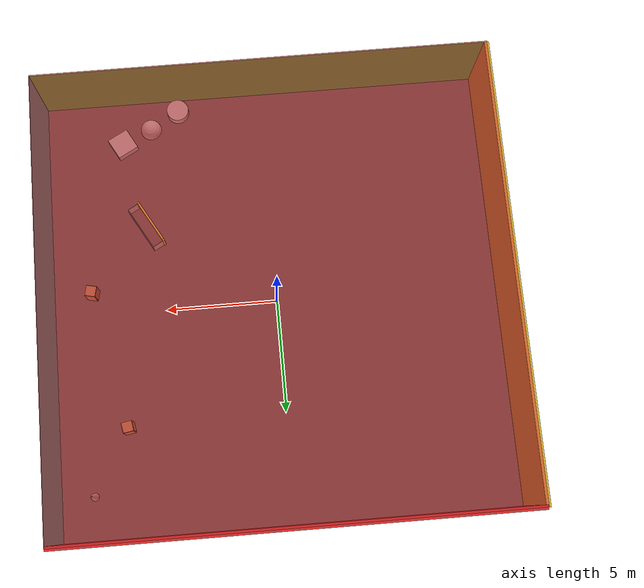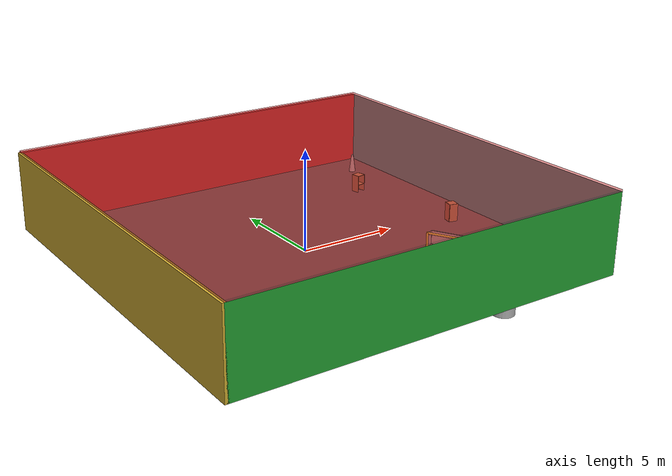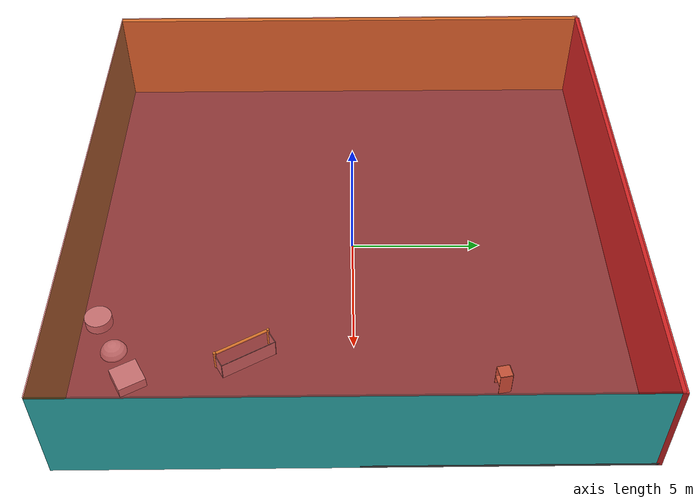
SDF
<sdf version="1.4">
 <world name="default">
  <physics type="ode">
   <max_step_size>0.001</max_step_size>
   <real_time_factor>1</real_time_factor>
   <real_time_update_rate>1000</real_time_update_rate>
   <gravity>0 0 -9.8</gravity>
  </physics>
  <scene><ambient>0.4 0.4 0.4 1</ambient><background>0.7 0.7 0.7 1</background><shadows>1</shadows></scene>
  <model name="Surrounding">
   <static>1</static>
   <link name="Ceiling">
    <collision name="Ceiling_Collision"><geometry><box><size>20 20 0.1</size></box></geometry></collision>
    <visual name="Ceiling_Visual">
     <geometry><box><size>20 20 0.1</size></box></geometry>
     <material>
      <script><uri>file://media/materials/scripts/gazebo.material</uri><name>Gazebo/RedTransparent</name></script>
     </material>
    </visual>
    <pose>0 0 4.05 0 0 0</pose>
   </link>
   <link name="Wall_South">
    <collision name="Wall_South_Collision">
     <geometry><box><size>20 0 4</size></box></geometry>
     <pose>0 0 2 0 -0 0</pose>
    </collision>
    <visual name="Wall_South_Visual">
     <pose>0 0 2 0 -0 0</pose>
     <geometry><box><size>20 0 4</size></box></geometry>
     <material>
      <script><uri>file://media/materials/scripts/gazebo.material</uri><name>Gazebo/Green</name></script>
     </material>
    </visual>
    <velocity_decay><linear>0</linear><angular>0</angular></velocity_decay>
    <pose>0 -10 0 0 -0 0</pose>
   </link>
   <link name="Wall_East">
    <collision name="Wall_21_Collision">
     <geometry><box><size>20 0 4</size></box></geometry>
     <pose>0 0 2 0 -0 0</pose>
    </collision>
    <visual name="Wall_21_Visual">
     <pose>0 0 2 0 -0 0</pose>
     <geometry><box><size>20 0 4</size></box></geometry>
     <material>
      <script><uri>file://media/materials/scripts/gazebo.material</uri><name>Gazebo/Turquoise</name></script>
     </material>
    </visual>
    <velocity_decay><linear>0</linear><angular>0</angular></velocity_decay>
    <pose>10 0 0 0 -0 1.5708</pose>
   </link>
   <link name="Wall_North">
    <collision name="Wall_22_Collision">
     <geometry><box><size>20 0.2 4</size></box></geometry>
     <pose>0 0 2 0 -0 0</pose>
    </collision>
    <visual name="Wall_22_Visual">
     <pose>0 0 2 0 -0 0</pose>
     <geometry><box><size>20 0.2 4</size></box></geometry>
     <material>
      <script><uri>file://media/materials/scripts/gazebo.material</uri><name>Gazebo/RedBright</name></script>
     </material>
    </visual>
    <velocity_decay><linear>0</linear><angular>0</angular></velocity_decay>
    <pose>0 10 0 0 -0 0</pose>
   </link>
   <link name="Wall_West">
    <collision name="Wall_23_Collision">
     <geometry><box><size>20 0.2 4</size></box></geometry>
     <pose>0 0 2 0 -0 0</pose>
    </collision>
    <visual name="Wall_23_Visual">
     <pose>0 0 2 0 -0 0</pose>
     <geometry><box><size>20 0.2 4</size></box></geometry>
     <material>
      <script><uri>file://media/materials/scripts/gazebo.material</uri><name>Gazebo/Gold</name></script>
     </material>
    </visual>
    <velocity_decay><linear>0</linear><angular>0</angular></velocity_decay>
    <pose>-10 0 0 0 0 -1.5708</pose>
   </link>
   <link name="Ground_link">
    <collision name="collision">
     <pose>0 0 .05 0 -0 0</pose>
     <geometry><box><size>20 20 0.1</size></box></geometry>
    </collision>
    <visual name="visual">
     <pose>0 0 .05 0 -0 0</pose>
     <geometry><box><size>20 20 0.1</size></box></geometry>
     <material>
      <script><uri>file://media/materials/scripts/gazebo.material</uri><name>Gazebo/Road</name></script>
     </material>
    </visual>
   </link>
   <static>1</static>
  </model>
  <spherical_coordinates>
   <surface_model>EARTH_WGS84</surface_model>
   <latitude_deg>0</latitude_deg>
   <longitude_deg>0</longitude_deg>
   <elevation>0</elevation>
   <heading_deg>0</heading_deg>
  </spherical_coordinates>
  <light name="lightball_0" type="diffuse">
   <diffuse>0.8 0.8 0.8 1</diffuse>
   <specular>0.2 0.2 0.2 1</specular>
   <attenuation>
    <range>100</range>
    <constant>0.7</constant>
    <linear>0.01</linear>
    <quadratic>0.001</quadratic>
   </attenuation>
   <direction>-0.5 0.1 -0.9</direction>
   <pose>-4.47406386776 -9.17052661078 2.84391259418 0 0 0</pose>
  </light>
  <light name="lightball_1" type="diffuse">
   <diffuse>0.8 0.8 0.8 1</diffuse>
   <specular>0.2 0.2 0.2 1</specular>
   <attenuation>
    <range>100</range>
    <constant>0.7</constant>
    <linear>0.01</linear>
    <quadratic>0.001</quadratic>
   </attenuation>
   <direction>-0.5 0.1 -0.9</direction>
   <pose>4.10897833886 -9.68985507571 2.01376946836 0 0 0</pose>
  </light>
  <light name="lightball_2" type="diffuse">
   <diffuse>0.8 0.8 0.8 1</diffuse>
   <specular>0.2 0.2 0.2 1</specular>
   <attenuation>
    <range>100</range>
    <constant>0.7</constant>
    <linear>0.01</linear>
    <quadratic>0.001</quadratic>
   </attenuation>
   <direction>-0.5 0.1 -0.9</direction>
   <pose>1.84370514196 -1.91617871856 1.29118195037 0 0 0</pose>
  </light>
  <light name="lightball_3" type="diffuse">
   <diffuse>0.8 0.8 0.8 1</diffuse>
   <specular>0.2 0.2 0.2 1</specular>
   <attenuation>
    <range>100</range>
    <constant>0.7</constant>
    <linear>0.01</linear>
    <quadratic>0.001</quadratic>
   </attenuation>
   <direction>-0.5 0.1 -0.9</direction>
   <pose>4.88956525839 6.18236172967 2.78950029831 0 0 0</pose>
  </light>
  <light name="lightball_4" type="diffuse">
   <diffuse>0.8 0.8 0.8 1</diffuse>
   <specular>0.2 0.2 0.2 1</specular>
   <attenuation>
    <range>100</range>
    <constant>0.7</constant>
    <linear>0.01</linear>
    <quadratic>0.001</quadratic>
   </attenuation>
   <direction>-0.5 0.1 -0.9</direction>
   <pose>2.66320677395 2.18690639593 2.35826516109 0 0 0</pose>
  </light>
  <light name="lightball_5" type="diffuse">
   <diffuse>0.8 0.8 0.8 1</diffuse>
   <specular>0.2 0.2 0.2 1</specular>
   <attenuation>
    <range>100</range>
    <constant>0.7</constant>
    <linear>0.01</linear>
    <quadratic>0.001</quadratic>
   </attenuation>
   <direction>-0.5 0.1 -0.9</direction>
   <pose>2.7497433415 -9.93585119648 2.84556911672 0 0 0</pose>
  </light>
  <light name="lightball_6" type="diffuse">
   <diffuse>0.8 0.8 0.8 1</diffuse>
   <specular>0.2 0.2 0.2 1</specular>
   <attenuation>
    <range>100</range>
    <constant>0.7</constant>
    <linear>0.01</linear>
    <quadratic>0.001</quadratic>
   </attenuation>
   <direction>-0.5 0.1 -0.9</direction>
   <pose>3.36637898449 0.325670928219 0.912383547033 0 0 0</pose>
  </light>
  <light name="lightball_7" type="diffuse">
   <diffuse>0.8 0.8 0.8 1</diffuse>
   <specular>0.2 0.2 0.2 1</specular>
   <attenuation>
    <range>100</range>
    <constant>0.7</constant>
    <linear>0.01</linear>
    <quadratic>0.001</quadratic>
   </attenuation>
   <direction>-0.5 0.1 -0.9</direction>
   <pose>-9.1733456509 8.4096143063 3.56759075261 0 0 0</pose>
  </light>
  <include>
   <uri>model://textured_shapes</uri>
   <pose>5.2201426769 -8.65375975642 0 0 0 2.07538217241</pose>
  </include>
  <include>
   <uri>model://robocup_3Dsim_goal</uri>
   <pose>5.41376153036 -3.98479604572 0 0 0 0.517382359474</pose>
  </include>
  <include><uri>model://cabinet</uri><pose>8.23802014576 -0.946185021163 0 0 0 2.9243056082</pose></include>
  <include><uri>model://cabinet</uri><pose>6.91065864345 5.18336583078 0 0 0 1.75537240356</pose></include>
  <include>
   <uri>model://construction_cone</uri>
   <pose>8.56807919082 8.02520676988 0 0 0 2.57070201984</pose>
  </include>
 </world>
</sdf>

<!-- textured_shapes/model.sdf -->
<sdf version="1.6">
  <model name="textured_shapes">
    <pose>0 0 0.5 0 0 0</pose>
    <link name="box">
      <pose>0 -1.5 0 0 0 0</pose>
      <collision name="collision">
        <geometry>
          <box>
            <size>1 1 1</size>
          </box>
        </geometry>
      </collision>
      <visual name="visual">
        <geometry>
          <box>
            <size>1 1 1</size>
          </box>
        </geometry>
        <material>
          <script>
            <uri>model://../model_source/models/textured_shapes/materials/scripts</uri>
            <uri>model://../model_source/models/textured_shapes/materials/textures</uri>
            <name>TexturedShape/Squares</name>
          </script>
        </material>
      </visual>
    </link>
    <link name="sphere">
      <collision name="collision">
        <geometry>
          <sphere>
            <radius>0.5</radius>
          </sphere>
        </geometry>
      </collision>
      <visual name="visual">
        <geometry>
          <sphere>
            <radius>0.5</radius>
          </sphere>
        </geometry>
        <material>
          <script>
            <uri>model://../model_source/models/textured_shapes/materials/scripts</uri>
            <uri>model://../model_source/models/textured_shapes/materials/textures</uri>
            <name>TexturedShape/Squares</name>
          </script>
        </material>
      </visual>
    </link>
    <link name="cylinder">
      <pose>0 1.5 0 0 0 0</pose>
      <collision name="collision">
        <geometry>
          <cylinder>
            <radius>0.5</radius>
            <length>1</length>
          </cylinder>
        </geometry>
      </collision>
      <visual name="visual">
        <geometry>
          <cylinder>
            <radius>0.5</radius>
            <length>1</length>
          </cylinder>
        </geometry>
        <material>
          <script>
            <uri>model://../model_source/models/textured_shapes/materials/scripts</uri>
            <uri>model://../model_source/models/textured_shapes/materials/textures</uri>
            <name>TexturedShape/Squares</name>
          </script>
        </material>
      </visual>
    </link>
  </model>
</sdf>

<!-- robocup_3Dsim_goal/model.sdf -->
<sdf version="1.5">
  <model name="robocup_3d_goal">
    <static>true</static>
    <link name="left_post">
      <pose>0 1.05 0.45 0 0 0</pose>
      <collision name="collision">
        <geometry>
          <cylinder>
            <radius>0.05</radius>
            <length>0.9</length>
          </cylinder>
        </geometry>
      </collision>
      <visual name="visual">
        <geometry>
          <cylinder>
            <radius>0.05</radius>
            <length>0.9</length>
          </cylinder>
        </geometry>
        <material>
          <script>
            <uri>file://media/materials/scripts/gazebo.material</uri>
            <name>Gazebo/ZincYellow</name>
          </script>
        </material>
      </visual>
    </link>
    <link name="left_support_horiz_lower">
      <pose>0.30 1.05 0.01 0 0 0</pose>
      <collision name="collision">
        <geometry>
          <box>
            <size>0.50 0.02 0.02</size>
          </box>
        </geometry>
      </collision>
      <visual name="visual">
        <geometry>
          <box>
            <size>0.50 0.02 0.02</size>
          </box>
        </geometry>
        <material>
          <script>
            <uri>file://media/materials/scripts/gazebo.material</uri>
            <name>Gazebo/White</name>
          </script>
        </material>
      </visual>
    </link>
    <link name="left_support_horiz_upper">
      <pose>0.30 1.05 0.79 0 0 0</pose>
      <collision name="collision">
        <geometry>
          <box>
            <size>0.50 0.02 0.02</size>
          </box>
        </geometry>
      </collision>
      <visual name="visual">
        <geometry>
          <box>
            <size>0.50 0.02 0.02</size>
          </box>
        </geometry>
        <material>
          <script>
            <uri>file://media/materials/scripts/gazebo.material</uri>
            <name>Gazebo/White</name>
          </script>
        </material>
      </visual>
    </link>
    <link name="left_support_vertical">
      <pose>0.56 1.05 0.4 0 1.5708 0</pose>
      <collision name="collision">
        <geometry>
          <box>
            <size>0.80 0.02 0.02</size>
          </box>
        </geometry>
      </collision>
      <visual name="visual">
        <geometry>
          <box>
            <size>0.80 0.02 0.02</size>
          </box>
        </geometry>
        <material>
          <script>
            <uri>file://media/materials/scripts/gazebo.material</uri>
            <name>Gazebo/White</name>
          </script>
        </material>
      </visual>
    </link>
    <link name="right_support_horiz_lower">
      <pose>0.30 -1.05 0.01 0 0 0</pose>
      <collision name="collision">
        <geometry>
          <box>
            <size>0.50 0.02 0.02</size>
          </box>
        </geometry>
      </collision>
      <visual name="visual">
        <geometry>
          <box>
            <size>0.50 0.02 0.02</size>
          </box>
        </geometry>
        <material>
          <script>
            <uri>file://media/materials/scripts/gazebo.material</uri>
            <name>Gazebo/White</name>
          </script>
        </material>
      </visual>
    </link>
    <link name="right_support_horiz_upper">
      <pose>0.30 -1.05 0.79 0 0 0</pose>
      <collision name="collision">
        <geometry>
          <box>
            <size>0.50 0.02 0.02</size>
          </box>
        </geometry>
      </collision>
      <visual name="visual">
        <geometry>
          <box>
            <size>0.50 0.02 0.02</size>
          </box>
        </geometry>
        <material>
          <script>
            <uri>file://media/materials/scripts/gazebo.material</uri>
            <name>Gazebo/White</name>
          </script>
        </material>
      </visual>
    </link>
    <link name="right_support_vertical">
      <pose>0.56 -1.05 0.4 0 1.5708 0</pose>
      <collision name="collision">
        <geometry>
          <box>
            <size>0.80 0.02 0.02</size>
          </box>
        </geometry>
      </collision>
      <visual name="visual">
        <geometry>
          <box>
            <size>0.80 0.02 0.02</size>
          </box>
        </geometry>
        <material>
          <script>
            <uri>file://media/materials/scripts/gazebo.material</uri>
            <name>Gazebo/White</name>
          </script>
        </material>
      </visual>
    </link>
    <link name="center_support_horiz_lower">
      <pose>0.56 0 0.01 0 1.5708 0</pose>
      <collision name="collision">
        <geometry>
          <box>
            <size>0.02 2.08 0.02</size>
          </box>
        </geometry>
      </collision>
      <visual name="visual">
        <geometry>
          <box>
            <size>0.02 2.08 0.02</size>
          </box>
        </geometry>
        <material>
          <script>
            <uri>file://media/materials/scripts/gazebo.material</uri>
            <name>Gazebo/White</name>
          </script>
        </material>
      </visual>
    </link>
    <link name="center_support_horiz_upper">
      <pose>0.56 0 0.79 0 1.5708 0</pose>
      <collision name="collision">
        <geometry>
          <box>
            <size>0.02 2.08 0.02</size>
          </box>
        </geometry>
      </collision>
      <visual name="visual">
        <geometry>
          <box>
            <size>0.02 2.08 0.02</size>
          </box>
        </geometry>
        <material>
          <script>
            <uri>file://media/materials/scripts/gazebo.material</uri>
            <name>Gazebo/White</name>
          </script>
        </material>
      </visual>
    </link>
    <link name="right_post">
      <pose>0 -1.05 0.45 0 0 0</pose>
      <collision name="collision">
        <geometry>
          <cylinder>
            <radius>0.05</radius>
            <length>0.9</length>
          </cylinder>
        </geometry>
      </collision>
      <visual name="visual">
        <geometry>
          <cylinder>
            <radius>0.05</radius>
            <length>0.9</length>
          </cylinder>
        </geometry>
        <material>
          <script>
            <uri>file://media/materials/scripts/gazebo.material</uri>
            <name>Gazebo/ZincYellow</name>
          </script>
        </material>
      </visual>
    </link>
    <link name="crossbar">
      <pose>0 0 0.85 1.57 1.57 0</pose>
      <collision name="collision">
        <geometry>
          <cylinder>
            <radius>0.05</radius>
            <length>2.0</length>
          </cylinder>
        </geometry>
      </collision>
      <visual name="visual">
        <geometry>
          <cylinder>
            <radius>0.05</radius>
            <length>2.0</length>
          </cylinder>
        </geometry>
        <material>
          <script>
            <uri>file://media/materials/scripts/gazebo.material</uri>
            <name>Gazebo/ZincYellow</name>
          </script>
        </material>
      </visual>
    </link>
    <link name="center_net">
      <pose>0.56 0 0.40 0 0 0</pose>
      <collision name="collision">
        <geometry>
          <box>
            <size>0.01 2.1 0.80</size>
          </box>
        </geometry>
      </collision>
      <visual name="visual">
        <geometry>
          <box>
            <size>0.01 2.1 0.80</size>
          </box>
        </geometry>
        <material>
          <script>
            <uri>model://../model_source/models/robocup09_spl_field/materials/scripts/</uri>
            <uri>model://../model_source/models/robocup09_spl_field/materials/textures/</uri>
            <name>RoboCup/Net</name>
          </script>
        </material>
      </visual>
    </link>
    <link name="left_net">
      <pose>0.30 1.05 0.40 0 0 0</pose>
      <collision name="collision">
        <geometry>
          <box>
            <size>0.50 0.01 0.76</size>
          </box>
        </geometry>
      </collision>
      <visual name="visual">
        <geometry>
          <box>
            <size>0.50 0.01 0.76</size>
          </box>
        </geometry>
        <material>
          <script>
            <uri>model://../model_source/models/robocup09_spl_field/materials/scripts/</uri>
            <uri>model://../model_source/models/robocup09_spl_field/materials/textures/</uri>
            <name>RoboCup/Net</name>
          </script>
        </material>
      </visual>
    </link>
    <link name="right_net">
      <pose>0.30 -1.05 0.40 0 0 0</pose>
      <collision name="collision">
        <geometry>
          <box>
            <size>0.50 0.01 0.76</size>
          </box>
        </geometry>
      </collision>
      <visual name="visual">
        <geometry>
          <box>
            <size>0.50 0.01 0.76</size>
          </box>
        </geometry>
        <material>
          <script>
            <uri>model://../model_source/models/robocup09_spl_field/materials/scripts/</uri>
            <uri>model://../model_source/models/robocup09_spl_field/materials/textures/</uri>
            <name>RoboCup/Net</name>
          </script>
        </material>
      </visual>
    </link>
  </model>
</sdf>

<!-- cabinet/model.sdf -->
<sdf version="1.5">
  <model name="cabinet">
    <static>true</static>
    <link name="cabinet_bottom_plate">
      <inertial>
        <pose>0 0 -1 0 0 0</pose>
        <inertia>
          <ixx>2.050000</ixx>
          <ixy>0</ixy>
          <ixz>0</ixz>
          <iyy>2.050000</iyy>
          <iyz>0</iyz>
          <izz>2.050000</izz>
        </inertia>
        <mass>25.000000</mass>
      </inertial>
      <collision name="cabinet_bottom_plate_geom">
        <pose>0 0 0.010000 0 0 0</pose>
        <geometry>
          <box>
            <size>0.450000 0.450000 0.020000</size>
          </box>
        </geometry>
      </collision>
      <visual name="cabinet_bottom_plate_geom_visual">
        <pose>0 0 0.010000 0 0 0</pose>
        <geometry>
          <box>
            <size>0.450000 0.450000 0.020000</size>
          </box>
        </geometry>
        <material>
          <script>
            <uri>model://media/materials/scripts/gazebo.material</uri>
            <name>Gazebo/Wood</name>
          </script>
        </material>
      </visual>
      <collision name="cabinet_bottom_plate_geom_cabinet_back_plate">
        <pose>0.235000 0 0.510000 0 0 0</pose>
        <geometry>
          <box>
            <size>0.020000 0.450000 1.020000</size>
          </box>
        </geometry>
      </collision>
      <visual name="cabinet_bottom_plate_geom_cabinet_back_plate_visual">
        <pose>0.235000 0 0.510000 0 0 0</pose>
        <geometry>
          <box>
            <size>0.020000 0.450000 1.020000</size>
          </box>
        </geometry>
        <material>
          <script>
            <uri>model://media/materials/scripts/gazebo.material</uri>
            <name>Gazebo/Wood</name>
          </script>
        </material>
      </visual>
      <collision name="cabinet_bottom_plate_geom_cabinet_left_plate">
        <pose>0 0.235000 0.510000 0 0 0</pose>
        <geometry>
          <box>
            <size>0.450000 0.020000 1.020000</size>
          </box>
        </geometry>
      </collision>
      <visual name="cabinet_bottom_plate_geom_cabinet_left_plate_visual">
        <pose>0 0.235000 0.510000 0 0 0</pose>
        <geometry>
          <box>
            <size>0.450000 0.020000 1.020000</size>
          </box>
        </geometry>
        <material>
          <script>
            <uri>model://media/materials/scripts/gazebo.material</uri>
            <name>Gazebo/Wood</name>
          </script>
        </material>
      </visual>
      <collision name="cabinet_bottom_plate_geom_cabinet_middle_plate">
        <pose>0 0 0.510000 0 0 0</pose>
        <geometry>
          <box>
            <size>0.450000 0.450000 0.020000</size>
          </box>
        </geometry>
      </collision>
      <visual name="cabinet_bottom_plate_geom_cabinet_middle_plate_visual">
        <pose>0 0 0.510000 0 0 0</pose>
        <geometry>
          <box>
            <size>0.450000 0.450000 0.020000</size>
          </box>
        </geometry>
        <material>
          <script>
            <uri>model://media/materials/scripts/gazebo.material</uri>
            <name>Gazebo/Wood</name>
          </script>
        </material>
      </visual>
      <collision name="cabinet_bottom_plate_geom_cabinet_right_plate">
        <pose>0 -0.235000 0.510000 0 0 0</pose>
        <geometry>
          <box>
            <size>0.450000 0.020000 1.020000</size>
          </box>
        </geometry>
      </collision>
      <visual name="cabinet_bottom_plate_geom_cabinet_right_plate_visual">
        <pose>0 -0.235000 0.510000 0 0 0</pose>
        <geometry>
          <box>
            <size>0.450000 0.020000 1.020000</size>
          </box>
        </geometry>
        <material>
          <script>
            <uri>model://media/materials/scripts/gazebo.material</uri>
            <name>Gazebo/Wood</name>
          </script>
        </material>
      </visual>
      <collision name="cabinet_bottom_plate_geom_cabinet_top_plate">
        <pose>0 0 1.010000 0 0 0</pose>
        <geometry>
          <box>
            <size>0.450000 0.450000 0.020000</size>
          </box>
        </geometry>
      </collision>
      <visual name="cabinet_bottom_plate_geom_cabinet_top_plate_visual">
        <pose>0 0 1.010000 0 0 0</pose>
        <geometry>
          <box>
            <size>0.450000 0.450000 0.020000</size>
          </box>
        </geometry>
        <material>
          <script>
            <uri>model://media/materials/scripts/gazebo.material</uri>
            <name>Gazebo/Wood</name>
          </script>
        </material>
      </visual>
    </link>
  </model>
</sdf>

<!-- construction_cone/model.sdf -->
<sdf version="1.5">
  <model name="Construction Cone">
    <link name="link">
      <collision name="collision">
        <geometry>
          <mesh>
            <scale>10 10 10</scale>
            <uri>file://isr-testbed/construction_cone/meshes/construction_cone.dae</uri>
          </mesh>
        </geometry>
      </collision>
      <visual name="visual">
        <geometry>
          <mesh>
            <scale>10 10 10</scale>
            <uri>file://isr-testbed/construction_cone/meshes/construction_cone.dae</uri>
          </mesh>
        </geometry>
      </visual>
    </link>
  </model>
</sdf>
